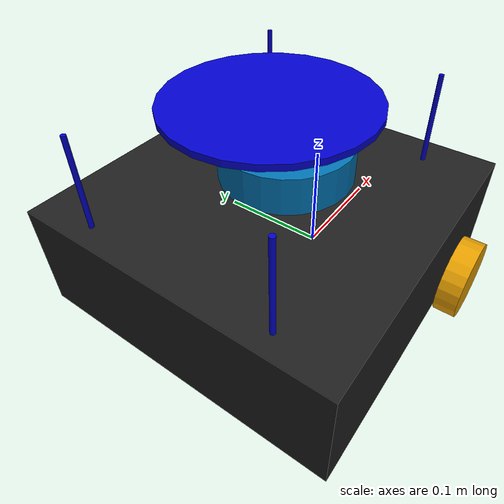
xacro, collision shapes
<?xml version="1.0" ?>
<robot name="turtlebot3_waffle_pi" xmlns:xacro="http://ros.org/wiki/xacro">
  <xacro:include filename="$(find turtlebot3_description)/urdf/common_properties.xacro"/>
  <xacro:include filename="$(find turtlebot3_description)/urdf/turtlebot3_waffle_pi.gazebo.xacro"/>
  <xacro:property name="radius" default="0.002" />
  <xacro:property name="pillar_length" value="0.08" />
  <xacro:property name="mass" value="$(arg mass)" />

  <!-- Macro for the inertia of a cylinder -->
  <xacro:macro name="cyl_inertia" params="h r mass">
    <inertia ixx="${0.0833333 * mass * (3*r*r + h*h)}" ixy="0.0" ixz="0.0"
      iyy="${0.0833333 * mass * (3*r*r + h*h)}" iyz="0.0"
      izz="${0.5 * mass * (r*r)}" />
  </xacro:macro>

  <link name="base_footprint"/>

  <joint name="base_joint" type="fixed">
    <parent link="base_footprint"/>
    <child link="base_link" />
    <origin xyz="0 0 0.010" rpy="0 0 0"/>
  </joint>

  <joint name="base_to_fl_pillar" type="fixed">
    <origin xyz="0.04 0.08 ${(pillar_length/2) + 0.09}" rpy="0 0 0" />
    <parent link="base_link" />
    <child link="front_left_pillar" />
  </joint>

  <link name="front_left_pillar">
      <visual>
        <geometry>
          <cylinder length="${pillar_length}" radius="${radius}"/>
        </geometry>
        <material name="blue">
          <color rgba="0 0 0.8 1"/>
        </material>
      </visual>
      <collision>
        <geometry>
          <cylinder length="${pillar_length}" radius="${radius}"/>
        </geometry>
      </collision>
      <inertial>
        <mass value="0.1"/>
        <xacro:cyl_inertia h="${pillar_length}" r="${radius}" mass="0.1"/>
      </inertial>
  </link>

  <joint name="base_to_fr_pillar" type="fixed">
    <origin xyz="0.04 -0.08 ${(pillar_length/2) + 0.09}" rpy="0 0 0" />
    <parent link="base_link" />
    <child link="front_right_pillar" />
  </joint>

  <link name="front_right_pillar">
      <visual>
        <geometry>
          <cylinder length="${pillar_length}" radius="${radius}"/>
        </geometry>
        <material name="blue">
          <color rgba="0 0 0.8 1"/>
        </material>
      </visual>
      <collision>
        <geometry>
          <cylinder length="${pillar_length}" radius="${radius}"/>
        </geometry>
      </collision>
      <inertial>
        <mass value="0.1"/>
        <xacro:cyl_inertia h="${pillar_length}" r="${radius}" mass="0.1"/>
      </inertial>
  </link>

  <joint name="base_to_br_pillar" type="fixed">
    <origin xyz="-0.18 -0.08 ${(pillar_length/2) + 0.09}" rpy="0 0 0" />
    <parent link="base_link" />
    <child link="back_right_pillar" />
  </joint>

  <link name="back_right_pillar">
      <visual>
        <geometry>
          <cylinder length="${pillar_length}" radius="${radius}"/>
        </geometry>
        <material name="blue">
          <color rgba="0 0 0.8 1"/>
        </material>
      </visual>
      <collision>
        <geometry>
          <cylinder length="${pillar_length}" radius="${radius}"/>
        </geometry>
      </collision>
      <inertial>
        <mass value="0.1"/>
        <xacro:cyl_inertia h="${pillar_length}" r="${radius}" mass="0.1"/>
      </inertial>
  </link>

  <joint name="base_to_bl_pillar" type="fixed">
    <origin xyz="-0.18 0.08 ${(pillar_length/2) + 0.09}" rpy="0 0 0" />
    <parent link="base_link" />
    <child link="back_left_pillar" />
  </joint>

  <link name="back_left_pillar">
      <visual>
        <geometry>
          <cylinder length="${pillar_length}" radius="${radius}"/>
        </geometry>
        <material name="blue">
          <color rgba="0 0 0.8 1"/>
        </material>
      </visual>
      <collision>
        <geometry>
          <cylinder length="${pillar_length}" radius="${radius}"/>
        </geometry>
      </collision>
      <inertial>
        <mass value="0.1"/>
        <xacro:cyl_inertia h="${pillar_length}" r="${radius}" mass="0.1"/>
      </inertial>
  </link>

  <joint name="base_to_disc" type="fixed">
    <origin xyz="-0.07 0.0 ${(pillar_length) + 0.09}" rpy="0 0 0" />
    <parent link="base_link" />
    <child link="disc" />
  </joint>

  <link name="disc">
      <visual>
        <geometry>
          <cylinder length="0.005" radius="0.16"/>
        </geometry>
        <material name="blue">
          <color rgba="0 0 0.8 1"/>
        </material>
      </visual>
      <collision>
        <geometry>
          <cylinder length="0.005" radius="0.08"/>
        </geometry>
      </collision>
      <inertial>
        <mass value="0.1"/>
        <xacro:cyl_inertia h="0.005" r="0.08" mass="0.1"/>
      </inertial>
  </link>

  <link name="base_link">
    <visual>
      <origin xyz="-0.064 0 0.0" rpy="0 0 0"/>
      <geometry>
        <mesh filename="package://turtlebot3_description/meshes/bases/waffle_pi_base.stl" scale="0.001 0.001 0.001"/>
      </geometry>
      <material name="light_black"/>
    </visual>

    <collision>
      <origin xyz="-0.064 0 0.047" rpy="0 0 0"/>
      <geometry>
        <box size="0.266 0.266 0.094"/>
      </geometry>
    </collision>

    <inertial>
      <origin xyz="0 0 0" rpy="0 0 0"/>
      <mass value="1.3729096e+00"/>
      <inertia ixx="8.7002718e-03" ixy="-4.7576583e-05" ixz="1.1160499e-04"
               iyy="8.6195418e-03" iyz="-3.5422299e-06"
               izz="1.4612727e-02" />
    </inertial>
  </link>

  <joint name="wheel_left_joint" type="continuous">
    <parent link="base_link"/>
    <child link="wheel_left_link"/>
    <origin xyz="0.0 0.144 0.023" rpy="-1.57 0 0"/>
    <axis xyz="0 0 1"/>
  </joint>

  <link name="wheel_left_link">
    <visual>
      <origin xyz="0 0 0" rpy="1.57 0 0"/>
      <geometry>
        <mesh filename="package://turtlebot3_description/meshes/wheels/left_tire.stl" scale="0.001 0.001 0.001"/>
      </geometry>
      <material name="dark"/>
    </visual>

    <collision>
      <origin xyz="0 0 0" rpy="0 0 0"/>
      <geometry>
        <cylinder length="0.018" radius="0.033"/>
      </geometry>
    </collision>

    <inertial>
      <origin xyz="0 0 0" />
      <mass value="2.8498940e-02" />
      <inertia ixx="1.1175580e-05" ixy="-4.2369783e-11" ixz="-5.9381719e-09"
               iyy="1.1192413e-05" iyz="-1.4400107e-11"
               izz="2.0712558e-05" />
      </inertial>
  </link>

  <joint name="wheel_right_joint" type="continuous">
    <parent link="base_link"/>
    <child link="wheel_right_link"/>
    <origin xyz="0.0 -0.144 0.023" rpy="-1.57 0 0"/>
    <axis xyz="0 0 1"/>
  </joint>

  <link name="wheel_right_link">
    <visual>
      <origin xyz="0 0 0" rpy="1.57 0 0"/>
      <geometry>
        <mesh filename="package://turtlebot3_description/meshes/wheels/right_tire.stl" scale="0.001 0.001 0.001"/>
      </geometry>
      <material name="dark"/>
    </visual>

    <collision>
      <origin xyz="0 0 0" rpy="0 0 0"/>
      <geometry>
        <cylinder length="0.018" radius="0.033"/>
      </geometry>
    </collision>

    <inertial>
      <origin xyz="0 0 0" />
      <mass value="2.8498940e-02" />
      <inertia ixx="1.1175580e-05" ixy="-4.2369783e-11" ixz="-5.9381719e-09"
               iyy="1.1192413e-05" iyz="-1.4400107e-11"
               izz="2.0712558e-05" />
      </inertial>
  </link>

  <joint name="caster_back_right_joint" type="fixed">
    <parent link="base_link"/>
    <child link="caster_back_right_link"/>
    <origin xyz="-0.177 -0.064 -0.004" rpy="-1.57 0 0"/>
  </joint>

  <link name="caster_back_right_link">
    <collision>
      <origin xyz="0 0.001 0" rpy="0 0 0"/>
      <geometry>
        <box size="0.030 0.009 0.020"/>
      </geometry>
    </collision>

    <inertial>
      <origin xyz="0 0 0" />
      <mass value="0.005" />
      <inertia ixx="0.001" ixy="0.0" ixz="0.0"
               iyy="0.001" iyz="0.0"
               izz="0.001" />
    </inertial>
  </link>

  <joint name="caster_back_left_joint" type="fixed">
    <parent link="base_link"/>
    <child link="caster_back_left_link"/>
    <origin xyz="-0.177 0.064 -0.004" rpy="-1.57 0 0"/>
  </joint>

  <link name="caster_back_left_link">
    <collision>
      <origin xyz="0 0.001 0" rpy="0 0 0"/>
      <geometry>
        <box size="0.030 0.009 0.020"/>
      </geometry>
    </collision>

    <inertial>
      <origin xyz="0 0 0" />
      <mass value="0.005" />
      <inertia ixx="0.001" ixy="0.0" ixz="0.0"
               iyy="0.001" iyz="0.0"
               izz="0.001" />
    </inertial>
  </link>

  <joint name="imu_joint" type="fixed">
    <parent link="base_link"/>
    <child link="imu_link"/>
    <origin xyz="0.0 0 0.068" rpy="0 0 0"/>
  </joint>

  <link name="imu_link"/>

  <joint name="scan_joint" type="fixed">
    <parent link="base_link"/>
    <child link="base_scan"/>
    <origin xyz="-0.064 0 0.122" rpy="0 0 0"/>
  </joint>

  <link name="base_scan">
    <visual>
      <origin xyz="0 0 0.0" rpy="0 0 0"/>
      <geometry>
        <mesh filename="package://turtlebot3_description/meshes/sensors/lds.stl" scale="0.001 0.001 0.001"/>
      </geometry>
      <material name="dark"/>
    </visual>

    <collision>
      <origin xyz="0.015 0 -0.0065" rpy="0 0 0"/>
      <geometry>
        <cylinder length="0.0315" radius="0.055"/>
      </geometry>
    </collision>

    <inertial>
      <mass value="0.114" />
      <origin xyz="0 0 0" />
      <inertia ixx="0.001" ixy="0.0" ixz="0.0"
               iyy="0.001" iyz="0.0"
               izz="0.001" />
    </inertial>
  </link>

  <joint name="camera_joint" type="fixed">
    <origin xyz="0.073 -0.011 0.084" rpy="0 0 0"/>
    <parent link="base_link"/>
    <child link="camera_link"/>
  </joint>

  <link name="camera_link">
    <collision>
      <origin xyz="0.005 0.011 0.013" rpy="0 0 0"/>
      <geometry>
        <box size="0.015 0.030 0.027"/>
      </geometry>
    </collision>
  </link>

  <joint name="camera_rgb_joint" type="fixed">
    <origin xyz="0.003 0.011 0.009" rpy="0 0 0"/>
    <parent link="camera_link"/>
    <child link="camera_rgb_frame"/>
  </joint>
  <link name="camera_rgb_frame"/>

  <joint name="camera_rgb_optical_joint" type="fixed">
    <origin xyz="0 0 0" rpy="-1.57 0 -1.57"/>
    <parent link="camera_rgb_frame"/>
    <child link="camera_rgb_optical_frame"/>
  </joint>
  <link name="camera_rgb_optical_frame"/>

  <gazebo reference="disc">
    <material>Gazebo/Orange</material>
      <mu1>4.01</mu1>
      <mu2>4.01</mu2>
  </gazebo>

</robot>
